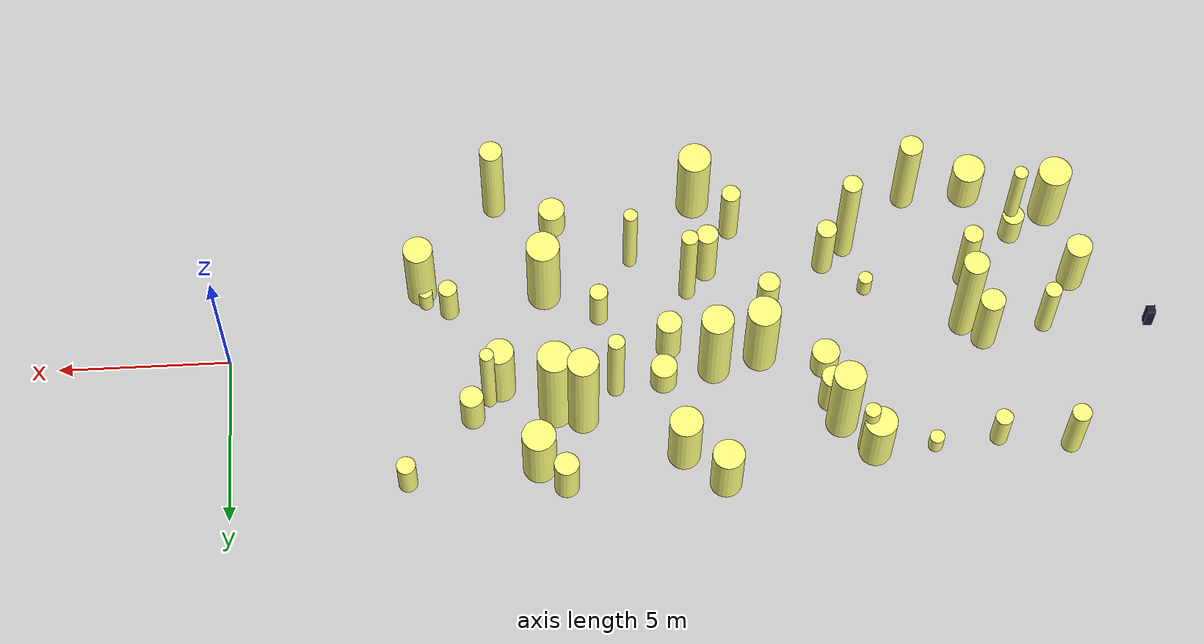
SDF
<sdf version="1.4">
 <world name="default">
  <include><uri>model://ground_plane</uri></include>
  <include><uri>model://sun</uri></include>
  <model name="forest">
   <static>true</static>
   <link name="cylinder2">
    <pose>-7.053083177962204 2.1377785248192627 0.7455218717888603 0 0 0</pose>
    <visual name="visual">
     <geometry>
      <cylinder><radius>0.3425231076029722</radius><length>1.4910437435777206</length></cylinder>
     </geometry>
     <material>
      <ambient>0.6 0.6 0.6 1</ambient>
      <diffuse>1 1 0.5 1</diffuse>
      <specular>0 0 0</specular>
      <emissive>0 0 0 1</emissive>
     </material>
    </visual>
    <collision name="collision">
     <geometry>
      <cylinder><radius>0.3425231076029722</radius><length>1.4910437435777206</length></cylinder>
     </geometry>
     <max_contacts>0</max_contacts>
    </collision>
   </link>
   <link name="cylinder6">
    <pose>-5.677932761745751 -2.018630922891189 1.3682783342092135 0 0 0</pose>
    <visual name="visual">
     <geometry>
      <cylinder><radius>0.4287351949719503</radius><length>2.736556668418427</length></cylinder>
     </geometry>
     <material>
      <ambient>0.6 0.6 0.6 1</ambient>
      <diffuse>1 1 0.5 1</diffuse>
      <specular>0 0 0</specular>
      <emissive>0 0 0 1</emissive>
     </material>
    </visual>
    <collision name="collision">
     <geometry>
      <cylinder><radius>0.4287351949719503</radius><length>2.736556668418427</length></cylinder>
     </geometry>
     <max_contacts>0</max_contacts>
    </collision>
   </link>
   <link name="cylinder7">
    <pose>-22.041332455986108 -4.536515657816919 0.778048254228679 0 0 0</pose>
    <visual name="visual">
     <geometry>
      <cylinder><radius>0.4722223022915783</radius><length>1.556096508457358</length></cylinder>
     </geometry>
     <material>
      <ambient>0.6 0.6 0.6 1</ambient>
      <diffuse>1 1 0.5 1</diffuse>
      <specular>0 0 0</specular>
      <emissive>0 0 0 1</emissive>
     </material>
    </visual>
    <collision name="collision">
     <geometry>
      <cylinder><radius>0.4722223022915783</radius><length>1.556096508457358</length></cylinder>
     </geometry>
     <max_contacts>0</max_contacts>
    </collision>
   </link>
   <link name="cylinder8">
    <pose>-6.470465119566821 -1.3590586940901006 0.7536241077120813 0 0 0</pose>
    <visual name="visual">
     <geometry>
      <cylinder><radius>0.2710924007848874</radius><length>1.5072482154241627</length></cylinder>
     </geometry>
     <material>
      <ambient>0.6 0.6 0.6 1</ambient>
      <diffuse>1 1 0.5 1</diffuse>
      <specular>0 0 0</specular>
      <emissive>0 0 0 1</emissive>
     </material>
    </visual>
    <collision name="collision">
     <geometry>
      <cylinder><radius>0.2710924007848874</radius><length>1.5072482154241627</length></cylinder>
     </geometry>
     <max_contacts>0</max_contacts>
    </collision>
   </link>
   <link name="cylinder9">
    <pose>-23.257907432206398 -3.105894066248116 0.5873739436395597 0 0 0</pose>
    <visual name="visual">
     <geometry>
      <cylinder><radius>0.32111720826552903</radius><length>1.1747478872791195</length></cylinder>
     </geometry>
     <material>
      <ambient>0.6 0.6 0.6 1</ambient>
      <diffuse>1 1 0.5 1</diffuse>
      <specular>0 0 0</specular>
      <emissive>0 0 0 1</emissive>
     </material>
    </visual>
    <collision name="collision">
     <geometry>
      <cylinder><radius>0.32111720826552903</radius><length>1.1747478872791195</length></cylinder>
     </geometry>
     <max_contacts>0</max_contacts>
    </collision>
   </link>
   <link name="cylinder10">
    <pose>-10.854893445226294 -0.9547875910160357 0.8113105853004781 0 0 0</pose>
    <visual name="visual">
     <geometry>
      <cylinder><radius>0.26327560562968627</radius><length>1.6226211706009561</length></cylinder>
     </geometry>
     <material>
      <ambient>0.6 0.6 0.6 1</ambient>
      <diffuse>1 1 0.5 1</diffuse>
      <specular>0 0 0</specular>
      <emissive>0 0 0 1</emissive>
     </material>
    </visual>
    <collision name="collision">
     <geometry>
      <cylinder><radius>0.26327560562968627</radius><length>1.6226211706009561</length></cylinder>
     </geometry>
     <max_contacts>0</max_contacts>
    </collision>
   </link>
   <link name="cylinder11">
    <pose>-10.23968672083252 2.335507035323028 1.9317898075404678 0 0 0</pose>
    <visual name="visual">
     <geometry>
      <cylinder><radius>0.4478229098009576</radius><length>3.8635796150809356</length></cylinder>
     </geometry>
     <material>
      <ambient>0.6 0.6 0.6 1</ambient>
      <diffuse>1 1 0.5 1</diffuse>
      <specular>0 0 0</specular>
      <emissive>0 0 0 1</emissive>
     </material>
    </visual>
    <collision name="collision">
     <geometry>
      <cylinder><radius>0.4478229098009576</radius><length>3.8635796150809356</length></cylinder>
     </geometry>
     <max_contacts>0</max_contacts>
    </collision>
   </link>
   <link name="cylinder12">
    <pose>-5.794057624121397 -1.644203110581004 0.38806685988691614 0 0 0</pose>
    <visual name="visual">
     <geometry>
      <cylinder><radius>0.2033211861652654</radius><length>0.7761337197738323</length></cylinder>
     </geometry>
     <material>
      <ambient>0.6 0.6 0.6 1</ambient>
      <diffuse>1 1 0.5 1</diffuse>
      <specular>0 0 0</specular>
      <emissive>0 0 0 1</emissive>
     </material>
    </visual>
    <collision name="collision">
     <geometry>
      <cylinder><radius>0.2033211861652654</radius><length>0.7761337197738323</length></cylinder>
     </geometry>
     <max_contacts>0</max_contacts>
    </collision>
   </link>
   <link name="cylinder13">
    <pose>-17.43027008849827 2.1021531115655083 0.828293583997211 0 0 0</pose>
    <visual name="visual">
     <geometry>
      <cylinder><radius>0.3463181730629652</radius><length>1.656587167994422</length></cylinder>
     </geometry>
     <material>
      <ambient>0.6 0.6 0.6 1</ambient>
      <diffuse>1 1 0.5 1</diffuse>
      <specular>0 0 0</specular>
      <emissive>0 0 0 1</emissive>
     </material>
    </visual>
    <collision name="collision">
     <geometry>
      <cylinder><radius>0.3463181730629652</radius><length>1.656587167994422</length></cylinder>
     </geometry>
     <max_contacts>0</max_contacts>
    </collision>
   </link>
   <link name="cylinder17">
    <pose>-7.552988100409053 1.5950902559486337 1.542434813002594 0 0 0</pose>
    <visual name="visual">
     <geometry>
      <cylinder><radius>0.2039629909939676</radius><length>3.084869626005188</length></cylinder>
     </geometry>
     <material>
      <ambient>0.6 0.6 0.6 1</ambient>
      <diffuse>1 1 0.5 1</diffuse>
      <specular>0 0 0</specular>
      <emissive>0 0 0 1</emissive>
     </material>
    </visual>
    <collision name="collision">
     <geometry>
      <cylinder><radius>0.2039629909939676</radius><length>3.084869626005188</length></cylinder>
     </geometry>
     <max_contacts>0</max_contacts>
    </collision>
   </link>
   <link name="cylinder18">
    <pose>-15.87181032003846 -1.2658075620291767 0.5859027005498268 0 0 0</pose>
    <visual name="visual">
     <geometry>
      <cylinder><radius>0.32011446914979025</radius><length>1.1718054010996537</length></cylinder>
     </geometry>
     <material>
      <ambient>0.6 0.6 0.6 1</ambient>
      <diffuse>1 1 0.5 1</diffuse>
      <specular>0 0 0</specular>
      <emissive>0 0 0 1</emissive>
     </material>
    </visual>
    <collision name="collision">
     <geometry>
      <cylinder><radius>0.32011446914979025</radius><length>1.1718054010996537</length></cylinder>
     </geometry>
     <max_contacts>0</max_contacts>
    </collision>
   </link>
   <link name="cylinder19">
    <pose>-5.1243381241065435 4.093073345648488 0.6514268063172639 0 0 0</pose>
    <visual name="visual">
     <geometry>
      <cylinder><radius>0.27703393411845423</radius><length>1.3028536126345278</length></cylinder>
     </geometry>
     <material>
      <ambient>0.6 0.6 0.6 1</ambient>
      <diffuse>1 1 0.5 1</diffuse>
      <specular>0 0 0</specular>
      <emissive>0 0 0 1</emissive>
     </material>
    </visual>
    <collision name="collision">
     <geometry>
      <cylinder><radius>0.27703393411845423</radius><length>1.3028536126345278</length></cylinder>
     </geometry>
     <max_contacts>0</max_contacts>
    </collision>
   </link>
   <link name="cylinder20">
    <pose>-20.352650023931176 3.6651285292710423 0.30651279300492185 0 0 0</pose>
    <visual name="visual">
     <geometry>
      <cylinder><radius>0.2152645864697512</radius><length>0.6130255860098437</length></cylinder>
     </geometry>
     <material>
      <ambient>0.6 0.6 0.6 1</ambient>
      <diffuse>1 1 0.5 1</diffuse>
      <specular>0 0 0</specular>
      <emissive>0 0 0 1</emissive>
     </material>
    </visual>
    <collision name="collision">
     <geometry>
      <cylinder><radius>0.2152645864697512</radius><length>0.6130255860098437</length></cylinder>
     </geometry>
     <max_contacts>0</max_contacts>
    </collision>
   </link>
   <link name="cylinder23">
    <pose>-21.722966195620675 -1.6980626440963809 1.389930434521299 0 0 0</pose>
    <visual name="visual">
     <geometry>
      <cylinder><radius>0.2848266608671214</radius><length>2.779860869042598</length></cylinder>
     </geometry>
     <material>
      <ambient>0.6 0.6 0.6 1</ambient>
      <diffuse>1 1 0.5 1</diffuse>
      <specular>0 0 0</specular>
      <emissive>0 0 0 1</emissive>
     </material>
    </visual>
    <collision name="collision">
     <geometry>
      <cylinder><radius>0.2848266608671214</radius><length>2.779860869042598</length></cylinder>
     </geometry>
     <max_contacts>0</max_contacts>
    </collision>
   </link>
   <link name="cylinder25">
    <pose>-23.93156974054534 -0.05395659627692595 1.1194451601155981 0 0 0</pose>
    <visual name="visual">
     <geometry>
      <cylinder><radius>0.2484419224223603</radius><length>2.2388903202311963</length></cylinder>
     </geometry>
     <material>
      <ambient>0.6 0.6 0.6 1</ambient>
      <diffuse>1 1 0.5 1</diffuse>
      <specular>0 0 0</specular>
      <emissive>0 0 0 1</emissive>
     </material>
    </visual>
    <collision name="collision">
     <geometry>
      <cylinder><radius>0.2484419224223603</radius><length>2.2388903202311963</length></cylinder>
     </geometry>
     <max_contacts>0</max_contacts>
    </collision>
   </link>
   <link name="cylinder26">
    <pose>-12.838864093144482 0.1674416807421153 0.8606457005123036 0 0 0</pose>
    <visual name="visual">
     <geometry>
      <cylinder><radius>0.3612265079447227</radius><length>1.7212914010246072</length></cylinder>
     </geometry>
     <material>
      <ambient>0.6 0.6 0.6 1</ambient>
      <diffuse>1 1 0.5 1</diffuse>
      <specular>0 0 0</specular>
      <emissive>0 0 0 1</emissive>
     </material>
    </visual>
    <collision name="collision">
     <geometry>
      <cylinder><radius>0.3612265079447227</radius><length>1.7212914010246072</length></cylinder>
     </geometry>
     <max_contacts>0</max_contacts>
    </collision>
   </link>
   <link name="cylinder28">
    <pose>-14.86856106425778 -3.635986227326521 1.1519740065115995 0 0 0</pose>
    <visual name="visual">
     <geometry>
      <cylinder><radius>0.27546447704839416</radius><length>2.303948013023199</length></cylinder>
     </geometry>
     <material>
      <ambient>0.6 0.6 0.6 1</ambient>
      <diffuse>1 1 0.5 1</diffuse>
      <specular>0 0 0</specular>
      <emissive>0 0 0 1</emissive>
     </material>
    </visual>
    <collision name="collision">
     <geometry>
      <cylinder><radius>0.27546447704839416</radius><length>2.303948013023199</length></cylinder>
     </geometry>
     <max_contacts>0</max_contacts>
    </collision>
   </link>
   <link name="cylinder29">
    <pose>-20.171636058569163 -4.477696496845774 1.5868214042546143 0 0 0</pose>
    <visual name="visual">
     <geometry>
      <cylinder><radius>0.33702319453878626</radius><length>3.1736428085092285</length></cylinder>
     </geometry>
     <material>
      <ambient>0.6 0.6 0.6 1</ambient>
      <diffuse>1 1 0.5 1</diffuse>
      <specular>0 0 0</specular>
      <emissive>0 0 0 1</emissive>
     </material>
    </visual>
    <collision name="collision">
     <geometry>
      <cylinder><radius>0.33702319453878626</radius><length>3.1736428085092285</length></cylinder>
     </geometry>
     <max_contacts>0</max_contacts>
    </collision>
   </link>
   <link name="cylinder30">
    <pose>-7.916161896281217 1.2496600140404208 1.2726255154498964 0 0 0</pose>
    <visual name="visual">
     <geometry>
      <cylinder><radius>0.4072249907252693</radius><length>2.545251030899793</length></cylinder>
     </geometry>
     <material>
      <ambient>0.6 0.6 0.6 1</ambient>
      <diffuse>1 1 0.5 1</diffuse>
      <specular>0 0 0</specular>
      <emissive>0 0 0 1</emissive>
     </material>
    </visual>
    <collision name="collision">
     <geometry>
      <cylinder><radius>0.4072249907252693</radius><length>2.545251030899793</length></cylinder>
     </geometry>
     <max_contacts>0</max_contacts>
    </collision>
   </link>
   <link name="cylinder31">
    <pose>-17.70354404161665 2.8310066277029486 1.6273444225232137 0 0 0</pose>
    <visual name="visual">
     <geometry>
      <cylinder><radius>0.4597115606962541</radius><length>3.2546888450464273</length></cylinder>
     </geometry>
     <material>
      <ambient>0.6 0.6 0.6 1</ambient>
      <diffuse>1 1 0.5 1</diffuse>
      <specular>0 0 0</specular>
      <emissive>0 0 0 1</emissive>
     </material>
    </visual>
    <collision name="collision">
     <geometry>
      <cylinder><radius>0.4597115606962541</radius><length>3.2546888450464273</length></cylinder>
     </geometry>
     <max_contacts>0</max_contacts>
    </collision>
   </link>
   <link name="cylinder32">
    <pose>-9.281641906676663 -1.7557040595859674 1.5452566506517336 0 0 0</pose>
    <visual name="visual">
     <geometry>
      <cylinder><radius>0.48616027494389596</radius><length>3.090513301303467</length></cylinder>
     </geometry>
     <material>
      <ambient>0.6 0.6 0.6 1</ambient>
      <diffuse>1 1 0.5 1</diffuse>
      <specular>0 0 0</specular>
      <emissive>0 0 0 1</emissive>
     </material>
    </visual>
    <collision name="collision">
     <geometry>
      <cylinder><radius>0.48616027494389596</radius><length>3.090513301303467</length></cylinder>
     </geometry>
     <max_contacts>0</max_contacts>
    </collision>
   </link>
   <link name="cylinder38">
    <pose>-9.668939333349218 4.412859585392857 0.8135028487092946 0 0 0</pose>
    <visual name="visual">
     <geometry>
      <cylinder><radius>0.3592106942418169</radius><length>1.6270056974185891</length></cylinder>
     </geometry>
     <material>
      <ambient>0.6 0.6 0.6 1</ambient>
      <diffuse>1 1 0.5 1</diffuse>
      <specular>0 0 0</specular>
      <emissive>0 0 0 1</emissive>
     </material>
    </visual>
    <collision name="collision">
     <geometry>
      <cylinder><radius>0.3592106942418169</radius><length>1.6270056974185891</length></cylinder>
     </geometry>
     <max_contacts>0</max_contacts>
    </collision>
   </link>
   <link name="cylinder39">
    <pose>-17.35243403862967 0.9638053620396594 0.4821447008460237 0 0 0</pose>
    <visual name="visual">
     <geometry>
      <cylinder><radius>0.40450242599011765</radius><length>0.9642894016920474</length></cylinder>
     </geometry>
     <material>
      <ambient>0.6 0.6 0.6 1</ambient>
      <diffuse>1 1 0.5 1</diffuse>
      <specular>0 0 0</specular>
      <emissive>0 0 0 1</emissive>
     </material>
    </visual>
    <collision name="collision">
     <geometry>
      <cylinder><radius>0.40450242599011765</radius><length>0.9642894016920474</length></cylinder>
     </geometry>
     <max_contacts>0</max_contacts>
    </collision>
   </link>
   <link name="cylinder40">
    <pose>-8.921030794987683 3.7843819762125275 1.137610614174596 0 0 0</pose>
    <visual name="visual">
     <geometry>
      <cylinder><radius>0.48728707302580004</radius><length>2.275221228349192</length></cylinder>
     </geometry>
     <material>
      <ambient>0.6 0.6 0.6 1</ambient>
      <diffuse>1 1 0.5 1</diffuse>
      <specular>0 0 0</specular>
      <emissive>0 0 0 1</emissive>
     </material>
    </visual>
    <collision name="collision">
     <geometry>
      <cylinder><radius>0.48728707302580004</radius><length>2.275221228349192</length></cylinder>
     </geometry>
     <max_contacts>0</max_contacts>
    </collision>
   </link>
   <link name="cylinder41">
    <pose>-15.491157676276757 0.5705804064977293 1.4863054029059948 0 0 0</pose>
    <visual name="visual">
     <geometry>
      <cylinder><radius>0.48136702820251775</radius><length>2.9726108058119896</length></cylinder>
     </geometry>
     <material>
      <ambient>0.6 0.6 0.6 1</ambient>
      <diffuse>1 1 0.5 1</diffuse>
      <specular>0 0 0</specular>
      <emissive>0 0 0 1</emissive>
     </material>
    </visual>
    <collision name="collision">
     <geometry>
      <cylinder><radius>0.48136702820251775</radius><length>2.9726108058119896</length></cylinder>
     </geometry>
     <max_contacts>0</max_contacts>
    </collision>
   </link>
   <link name="cylinder43">
    <pose>-11.227578387033772 1.403979539215511 1.5701394048374335 0 0 0</pose>
    <visual name="visual">
     <geometry>
      <cylinder><radius>0.24317565934227597</radius><length>3.140278809674867</length></cylinder>
     </geometry>
     <material>
      <ambient>0.6 0.6 0.6 1</ambient>
      <diffuse>1 1 0.5 1</diffuse>
      <specular>0 0 0</specular>
      <emissive>0 0 0 1</emissive>
     </material>
    </visual>
    <collision name="collision">
     <geometry>
      <cylinder><radius>0.24317565934227597</radius><length>3.140278809674867</length></cylinder>
     </geometry>
     <max_contacts>0</max_contacts>
    </collision>
   </link>
   <link name="cylinder46">
    <pose>-24.267590009946556 3.8172753181171313 1.0849845144291745 0 0 0</pose>
    <visual name="visual">
     <geometry>
      <cylinder><radius>0.28195847940675284</radius><length>2.169969028858349</length></cylinder>
     </geometry>
     <material>
      <ambient>0.6 0.6 0.6 1</ambient>
      <diffuse>1 1 0.5 1</diffuse>
      <specular>0 0 0</specular>
      <emissive>0 0 0 1</emissive>
     </material>
    </visual>
    <collision name="collision">
     <geometry>
      <cylinder><radius>0.28195847940675284</radius><length>2.169969028858349</length></cylinder>
     </geometry>
     <max_contacts>0</max_contacts>
    </collision>
   </link>
   <link name="cylinder47">
    <pose>-13.501873059228553 -1.650667561456686 1.7129860077275327 0 0 0</pose>
    <visual name="visual">
     <geometry>
      <cylinder><radius>0.24190093716637934</radius><length>3.4259720154550655</length></cylinder>
     </geometry>
     <material>
      <ambient>0.6 0.6 0.6 1</ambient>
      <diffuse>1 1 0.5 1</diffuse>
      <specular>0 0 0</specular>
      <emissive>0 0 0 1</emissive>
     </material>
    </visual>
    <collision name="collision">
     <geometry>
      <cylinder><radius>0.24190093716637934</radius><length>3.4259720154550655</length></cylinder>
     </geometry>
     <max_contacts>0</max_contacts>
    </collision>
   </link>
   <link name="cylinder52">
    <pose>-13.95625358361427 -4.569633419246502 0.8893343200442988 0 0 0</pose>
    <visual name="visual">
     <geometry>
      <cylinder><radius>0.3392188028762888</radius><length>1.7786686400885976</length></cylinder>
     </geometry>
     <material>
      <ambient>0.6 0.6 0.6 1</ambient>
      <diffuse>1 1 0.5 1</diffuse>
      <specular>0 0 0</specular>
      <emissive>0 0 0 1</emissive>
     </material>
    </visual>
    <collision name="collision">
     <geometry>
      <cylinder><radius>0.3392188028762888</radius><length>1.7786686400885976</length></cylinder>
     </geometry>
     <max_contacts>0</max_contacts>
    </collision>
   </link>
   <link name="cylinder54">
    <pose>-24.87595430924636 -1.4902560423669775 1.066712900287382 0 0 0</pose>
    <visual name="visual">
     <geometry>
      <cylinder><radius>0.38071903366398585</radius><length>2.133425800574764</length></cylinder>
     </geometry>
     <material>
      <ambient>0.6 0.6 0.6 1</ambient>
      <diffuse>1 1 0.5 1</diffuse>
      <specular>0 0 0</specular>
      <emissive>0 0 0 1</emissive>
     </material>
    </visual>
    <collision name="collision">
     <geometry>
      <cylinder><radius>0.38071903366398585</radius><length>2.133425800574764</length></cylinder>
     </geometry>
     <max_contacts>0</max_contacts>
    </collision>
   </link>
   <link name="cylinder55">
    <pose>-7.902964053480538 -4.777170698010959 1.708010642592269 0 0 0</pose>
    <visual name="visual">
     <geometry>
      <cylinder><radius>0.3296761939961388</radius><length>3.416021285184538</length></cylinder>
     </geometry>
     <material>
      <ambient>0.6 0.6 0.6 1</ambient>
      <diffuse>1 1 0.5 1</diffuse>
      <specular>0 0 0</specular>
      <emissive>0 0 0 1</emissive>
     </material>
    </visual>
    <collision name="collision">
     <geometry>
      <cylinder><radius>0.3296761939961388</radius><length>3.416021285184538</length></cylinder>
     </geometry>
     <max_contacts>0</max_contacts>
    </collision>
   </link>
   <link name="cylinder56">
    <pose>-17.574686243195902 -2.349012793082077 1.1330386439145852 0 0 0</pose>
    <visual name="visual">
     <geometry>
      <cylinder><radius>0.29526821620431387</radius><length>2.2660772878291704</length></cylinder>
     </geometry>
     <material>
      <ambient>0.6 0.6 0.6 1</ambient>
      <diffuse>1 1 0.5 1</diffuse>
      <specular>0 0 0</specular>
      <emissive>0 0 0 1</emissive>
     </material>
    </visual>
    <collision name="collision">
     <geometry>
      <cylinder><radius>0.29526821620431387</radius><length>2.2660772878291704</length></cylinder>
     </geometry>
     <max_contacts>0</max_contacts>
    </collision>
   </link>
   <link name="cylinder58">
    <pose>-14.123253541562036 0.9191090500755568 1.6398232900675318 0 0 0</pose>
    <visual name="visual">
     <geometry>
      <cylinder><radius>0.46551618750189744</radius><length>3.2796465801350636</length></cylinder>
     </geometry>
     <material>
      <ambient>0.6 0.6 0.6 1</ambient>
      <diffuse>1 1 0.5 1</diffuse>
      <specular>0 0 0</specular>
      <emissive>0 0 0 1</emissive>
     </material>
    </visual>
    <collision name="collision">
     <geometry>
      <cylinder><radius>0.46551618750189744</radius><length>3.2796465801350636</length></cylinder>
     </geometry>
     <max_contacts>0</max_contacts>
    </collision>
   </link>
   <link name="cylinder59">
    <pose>-9.609776152343997 -4.061012149677348 0.5256643369051615 0 0 0</pose>
    <visual name="visual">
     <geometry>
      <cylinder><radius>0.3874751381393938</radius><length>1.051328673810323</length></cylinder>
     </geometry>
     <material>
      <ambient>0.6 0.6 0.6 1</ambient>
      <diffuse>1 1 0.5 1</diffuse>
      <specular>0 0 0</specular>
      <emissive>0 0 0 1</emissive>
     </material>
    </visual>
    <collision name="collision">
     <geometry>
      <cylinder><radius>0.3874751381393938</radius><length>1.051328673810323</length></cylinder>
     </geometry>
     <max_contacts>0</max_contacts>
    </collision>
   </link>
   <link name="cylinder60">
    <pose>-9.456611717616886 2.0667098246911006 1.8742407907984417 0 0 0</pose>
    <visual name="visual">
     <geometry>
      <cylinder><radius>0.49501910202960187</radius><length>3.7484815815968835</length></cylinder>
     </geometry>
     <material>
      <ambient>0.6 0.6 0.6 1</ambient>
      <diffuse>1 1 0.5 1</diffuse>
      <specular>0 0 0</specular>
      <emissive>0 0 0 1</emissive>
     </material>
    </visual>
    <collision name="collision">
     <geometry>
      <cylinder><radius>0.49501910202960187</radius><length>3.7484815815968835</length></cylinder>
     </geometry>
     <max_contacts>0</max_contacts>
    </collision>
   </link>
   <link name="cylinder61">
    <pose>-11.872005867686536 -2.7799893459832283 1.4228996720215508 0 0 0</pose>
    <visual name="visual">
     <geometry>
      <cylinder><radius>0.20490631877437468</radius><length>2.8457993440431015</length></cylinder>
     </geometry>
     <material>
      <ambient>0.6 0.6 0.6 1</ambient>
      <diffuse>1 1 0.5 1</diffuse>
      <specular>0 0 0</specular>
      <emissive>0 0 0 1</emissive>
     </material>
    </visual>
    <collision name="collision">
     <geometry>
      <cylinder><radius>0.20490631877437468</radius><length>2.8457993440431015</length></cylinder>
     </geometry>
     <max_contacts>0</max_contacts>
    </collision>
   </link>
   <link name="cylinder66">
    <pose>-13.088519057582577 3.5834655569239473 1.153539882643262 0 0 0</pose>
    <visual name="visual">
     <geometry>
      <cylinder><radius>0.4778429957184916</radius><length>2.307079765286524</length></cylinder>
     </geometry>
     <material>
      <ambient>0.6 0.6 0.6 1</ambient>
      <diffuse>1 1 0.5 1</diffuse>
      <specular>0 0 0</specular>
      <emissive>0 0 0 1</emissive>
     </material>
    </visual>
    <collision name="collision">
     <geometry>
      <cylinder><radius>0.4778429957184916</radius><length>2.307079765286524</length></cylinder>
     </geometry>
     <max_contacts>0</max_contacts>
    </collision>
   </link>
   <link name="cylinder73">
    <pose>-13.852677021126992 -4.595912081360455 1.4095750253862123 0 0 0</pose>
    <visual name="visual">
     <geometry>
      <cylinder><radius>0.48174639465552604</radius><length>2.8191500507724245</length></cylinder>
     </geometry>
     <material>
      <ambient>0.6 0.6 0.6 1</ambient>
      <diffuse>1 1 0.5 1</diffuse>
      <specular>0 0 0</specular>
      <emissive>0 0 0 1</emissive>
     </material>
    </visual>
    <collision name="collision">
     <geometry>
      <cylinder><radius>0.48174639465552604</radius><length>2.8191500507724245</length></cylinder>
     </geometry>
     <max_contacts>0</max_contacts>
    </collision>
   </link>
   <link name="cylinder74">
    <pose>-18.236355340027323 -2.874353612071485 1.9694787346644245 0 0 0</pose>
    <visual name="visual">
     <geometry>
      <cylinder><radius>0.28242244079698253</radius><length>3.938957469328849</length></cylinder>
     </geometry>
     <material>
      <ambient>0.6 0.6 0.6 1</ambient>
      <diffuse>1 1 0.5 1</diffuse>
      <specular>0 0 0</specular>
      <emissive>0 0 0 1</emissive>
     </material>
    </visual>
    <collision name="collision">
     <geometry>
      <cylinder><radius>0.28242244079698253</radius><length>3.938957469328849</length></cylinder>
     </geometry>
     <max_contacts>0</max_contacts>
    </collision>
   </link>
   <link name="cylinder76">
    <pose>-22.1008897900172 0.31564091695888497 1.2589151902651365 0 0 0</pose>
    <visual name="visual">
     <geometry>
      <cylinder><radius>0.3573493380069645</radius><length>2.517830380530273</length></cylinder>
     </geometry>
     <material>
      <ambient>0.6 0.6 0.6 1</ambient>
      <diffuse>1 1 0.5 1</diffuse>
      <specular>0 0 0</specular>
      <emissive>0 0 0 1</emissive>
     </material>
    </visual>
    <collision name="collision">
     <geometry>
      <cylinder><radius>0.3573493380069645</radius><length>2.517830380530273</length></cylinder>
     </geometry>
     <max_contacts>0</max_contacts>
    </collision>
   </link>
   <link name="cylinder78">
    <pose>-22.20135423112583 3.509630829842237 0.7064686662724801 0 0 0</pose>
    <visual name="visual">
     <geometry>
      <cylinder><radius>0.2563038821050296</radius><length>1.4129373325449601</length></cylinder>
     </geometry>
     <material>
      <ambient>0.6 0.6 0.6 1</ambient>
      <diffuse>1 1 0.5 1</diffuse>
      <specular>0 0 0</specular>
      <emissive>0 0 0 1</emissive>
     </material>
    </visual>
    <collision name="collision">
     <geometry>
      <cylinder><radius>0.2563038821050296</radius><length>1.4129373325449601</length></cylinder>
     </geometry>
     <max_contacts>0</max_contacts>
    </collision>
   </link>
   <link name="cylinder79">
    <pose>-18.599441451650783 3.755973393793388 1.0327960805810523 0 0 0</pose>
    <visual name="visual">
     <geometry>
      <cylinder><radius>0.47251952012240755</radius><length>2.0655921611621046</length></cylinder>
     </geometry>
     <material>
      <ambient>0.6 0.6 0.6 1</ambient>
      <diffuse>1 1 0.5 1</diffuse>
      <specular>0 0 0</specular>
      <emissive>0 0 0 1</emissive>
     </material>
    </visual>
    <collision name="collision">
     <geometry>
      <cylinder><radius>0.47251952012240755</radius><length>2.0655921611621046</length></cylinder>
     </geometry>
     <max_contacts>0</max_contacts>
    </collision>
   </link>
   <link name="cylinder81">
    <pose>-18.336957509653253 3.5929150915211583 1.258591829487304 0 0 0</pose>
    <visual name="visual">
     <geometry>
      <cylinder><radius>0.23035114584690022</radius><length>2.517183658974608</length></cylinder>
     </geometry>
     <material>
      <ambient>0.6 0.6 0.6 1</ambient>
      <diffuse>1 1 0.5 1</diffuse>
      <specular>0 0 0</specular>
      <emissive>0 0 0 1</emissive>
     </material>
    </visual>
    <collision name="collision">
     <geometry>
      <cylinder><radius>0.23035114584690022</radius><length>2.517183658974608</length></cylinder>
     </geometry>
     <max_contacts>0</max_contacts>
    </collision>
   </link>
   <link name="cylinder83">
    <pose>-18.75492378411025 -1.4757026765109025 0.3716270746443573 0 0 0</pose>
    <visual name="visual">
     <geometry>
      <cylinder><radius>0.2064207466043776</radius><length>0.7432541492887146</length></cylinder>
     </geometry>
     <material>
      <ambient>0.6 0.6 0.6 1</ambient>
      <diffuse>1 1 0.5 1</diffuse>
      <specular>0 0 0</specular>
      <emissive>0 0 0 1</emissive>
     </material>
    </visual>
    <collision name="collision">
     <geometry>
      <cylinder><radius>0.2064207466043776</radius><length>0.7432541492887146</length></cylinder>
     </geometry>
     <max_contacts>0</max_contacts>
    </collision>
   </link>
   <link name="cylinder86">
    <pose>-23.19251915211303 -3.250724823609227 1.7421609254572148 0 0 0</pose>
    <visual name="visual">
     <geometry>
      <cylinder><radius>0.20277786704195824</radius><length>3.4843218509144296</length></cylinder>
     </geometry>
     <material>
      <ambient>0.6 0.6 0.6 1</ambient>
      <diffuse>1 1 0.5 1</diffuse>
      <specular>0 0 0</specular>
      <emissive>0 0 0 1</emissive>
     </material>
    </visual>
    <collision name="collision">
     <geometry>
      <cylinder><radius>0.20277786704195824</radius><length>3.4843218509144296</length></cylinder>
     </geometry>
     <max_contacts>0</max_contacts>
    </collision>
   </link>
   <link name="cylinder87">
    <pose>-24.396261409685167 -3.794979614874885 1.2422758744298263 0 0 0</pose>
    <visual name="visual">
     <geometry>
      <cylinder><radius>0.4881008634647779</radius><length>2.4845517488596527</length></cylinder>
     </geometry>
     <material>
      <ambient>0.6 0.6 0.6 1</ambient>
      <diffuse>1 1 0.5 1</diffuse>
      <specular>0 0 0</specular>
      <emissive>0 0 0 1</emissive>
     </material>
    </visual>
    <collision name="collision">
     <geometry>
      <cylinder><radius>0.4881008634647779</radius><length>2.4845517488596527</length></cylinder>
     </geometry>
     <max_contacts>0</max_contacts>
    </collision>
   </link>
   <link name="cylinder88">
    <pose>-5.808463912134453 -2.7219181853946406 0.30801296286189245 0 0 0</pose>
    <visual name="visual">
     <geometry>
      <cylinder><radius>0.24966839169216004</radius><length>0.6160259257237849</length></cylinder>
     </geometry>
     <material>
      <ambient>0.6 0.6 0.6 1</ambient>
      <diffuse>1 1 0.5 1</diffuse>
      <specular>0 0 0</specular>
      <emissive>0 0 0 1</emissive>
     </material>
    </visual>
    <collision name="collision">
     <geometry>
      <cylinder><radius>0.24966839169216004</radius><length>0.6160259257237849</length></cylinder>
     </geometry>
     <max_contacts>0</max_contacts>
    </collision>
   </link>
   <link name="cylinder90">
    <pose>-14.229983234633686 4.524190125953776 1.0081292043048347 0 0 0</pose>
    <visual name="visual">
     <geometry>
      <cylinder><radius>0.46214794406701587</radius><length>2.0162584086096693</length></cylinder>
     </geometry>
     <material>
      <ambient>0.6 0.6 0.6 1</ambient>
      <diffuse>1 1 0.5 1</diffuse>
      <specular>0 0 0</specular>
      <emissive>0 0 0 1</emissive>
     </material>
    </visual>
    <collision name="collision">
     <geometry>
      <cylinder><radius>0.46214794406701587</radius><length>2.0162584086096693</length></cylinder>
     </geometry>
     <max_contacts>0</max_contacts>
    </collision>
   </link>
   <link name="cylinder94">
    <pose>-14.086769557435098 -2.301080720381589 1.1777652427687777 0 0 0</pose>
    <visual name="visual">
     <geometry>
      <cylinder><radius>0.3179333448353344</radius><length>2.3555304855375554</length></cylinder>
     </geometry>
     <material>
      <ambient>0.6 0.6 0.6 1</ambient>
      <diffuse>1 1 0.5 1</diffuse>
      <specular>0 0 0</specular>
      <emissive>0 0 0 1</emissive>
     </material>
    </visual>
    <collision name="collision">
     <geometry>
      <cylinder><radius>0.3179333448353344</radius><length>2.3555304855375554</length></cylinder>
     </geometry>
     <max_contacts>0</max_contacts>
    </collision>
   </link>
   <link name="cylinder96">
    <pose>-21.513642208033296 -0.17976824267469294 1.955532829279501 0 0 0</pose>
    <visual name="visual">
     <geometry><cylinder><radius>0.368598800659819</radius><length>3.911065658559002</length></cylinder></geometry>
     <material>
      <ambient>0.6 0.6 0.6 1</ambient>
      <diffuse>1 1 0.5 1</diffuse>
      <specular>0 0 0</specular>
      <emissive>0 0 0 1</emissive>
     </material>
    </visual>
    <collision name="collision">
     <geometry><cylinder><radius>0.368598800659819</radius><length>3.911065658559002</length></cylinder></geometry>
     <max_contacts>0</max_contacts>
    </collision>
   </link>
   <link name="cylinder98">
    <pose>-12.635291702191392 1.2347897905201375 0.5218544953739639 0 0 0</pose>
    <visual name="visual">
     <geometry>
      <cylinder><radius>0.38363655400315355</radius><length>1.0437089907479278</length></cylinder>
     </geometry>
     <material>
      <ambient>0.6 0.6 0.6 1</ambient>
      <diffuse>1 1 0.5 1</diffuse>
      <specular>0 0 0</specular>
      <emissive>0 0 0 1</emissive>
     </material>
    </visual>
    <collision name="collision">
     <geometry>
      <cylinder><radius>0.38363655400315355</radius><length>1.0437089907479278</length></cylinder>
     </geometry>
     <max_contacts>0</max_contacts>
    </collision>
   </link>
   <link name="cube3">
    <pose>-27.0 0.0 0.25 0 0 0</pose>
    <visual name="visual">
     <geometry><box><size>0.25 0.25 1.0</size></box></geometry>
     <material>
      <ambient>0.1 0.1 0.1 1</ambient>
      <diffuse>0.1 0.1 0.2 1</diffuse>
      <specular>0 0 0</specular>
      <emissive>0 0 0 1</emissive>
     </material>
    </visual>
    <collision name="collision">
     <geometry><box><size>0.25 0.25 1.0</size></box></geometry>
     <max_contacts>0</max_contacts>
    </collision>
   </link>
  </model>
 </world>
</sdf>
